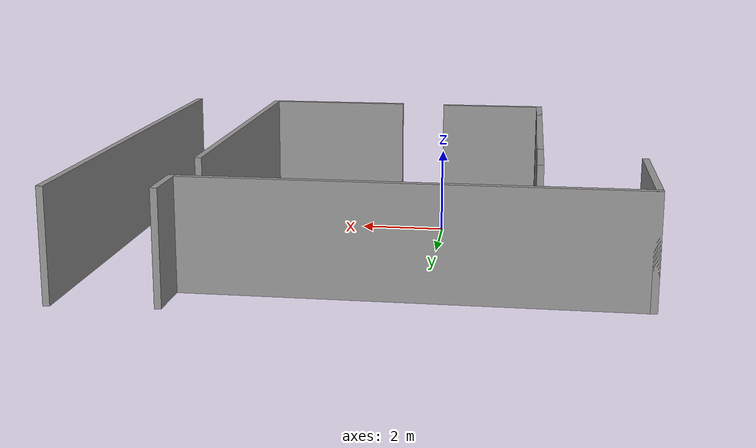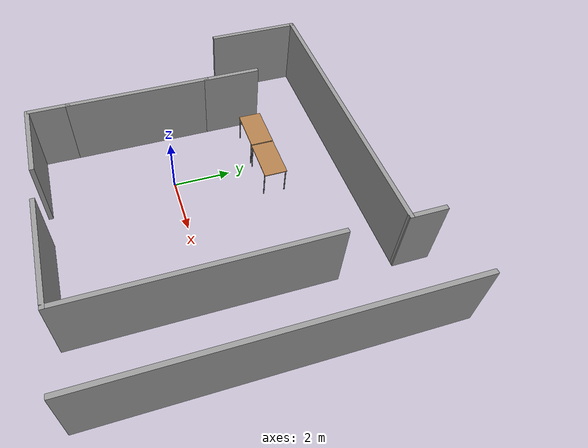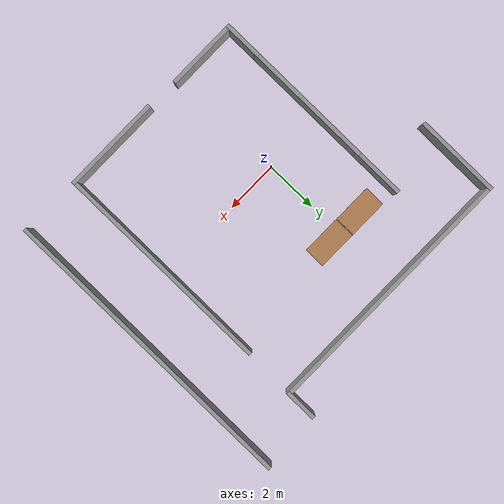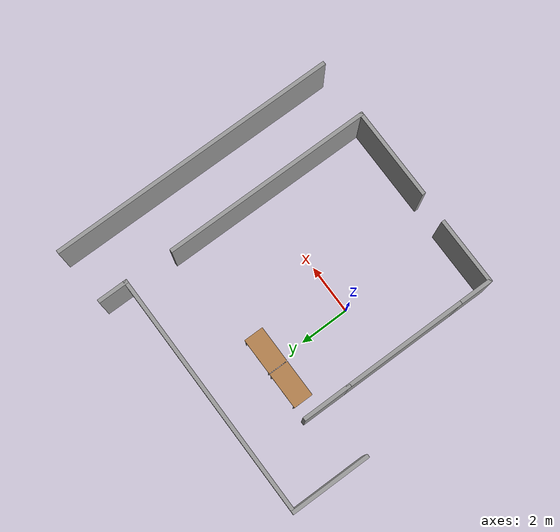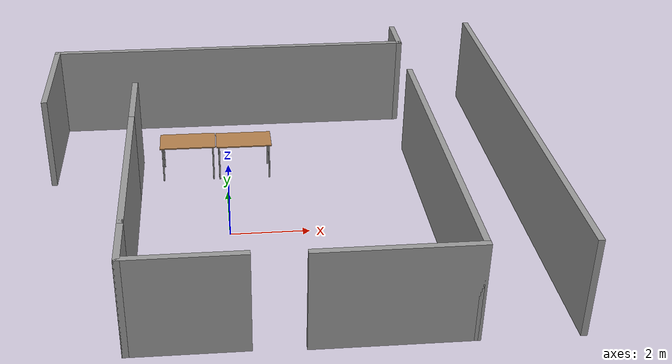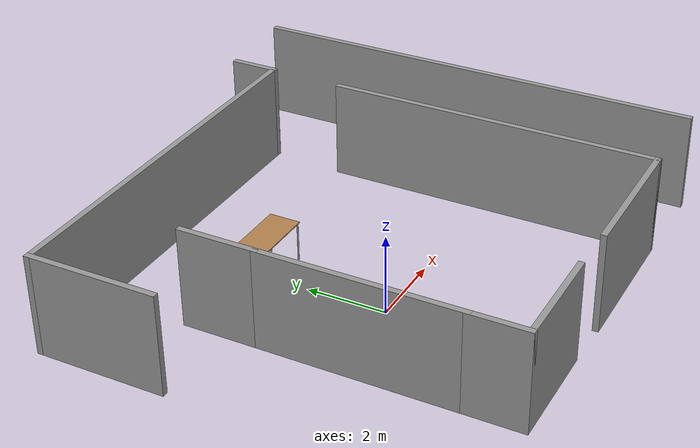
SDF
<sdf version="1.7">
 <world name="default">
  <light name="sun" type="directional">
   <pose>0 0 10 0 -0 0</pose>
   <diffuse>0.8 0.8 0.8 1</diffuse>
   <specular>0.2 0.2 0.2 1</specular>
   <attenuation>
    <range>1000</range>
    <constant>0.9</constant>
    <linear>0.01</linear>
    <quadratic>0.001</quadratic>
   </attenuation>
   <direction>-0.5 0.1 -0.9</direction>
   <spot><inner_angle>0</inner_angle><outer_angle>0</outer_angle><falloff>0</falloff></spot>
  </light>
  <gravity>0 0 -9.8</gravity>
  <magnetic_field>6e-06 2.3e-05 -4.2e-05</magnetic_field>
  <atmosphere type="adiabatic"/>
  <physics name="default_physics" default="0" type="ode">
   <max_step_size>0.001</max_step_size>
   <real_time_factor>1</real_time_factor>
   <real_time_update_rate>1000</real_time_update_rate>
  </physics>
  <scene><ambient>0.4 0.4 0.4 1</ambient><background>0.7 0.7 0.7 1</background><shadows>1</shadows></scene>
  <spherical_coordinates>
   <surface_model>EARTH_WGS84</surface_model>
   <latitude_deg>0</latitude_deg>
   <longitude_deg>0</longitude_deg>
   <elevation>0</elevation>
   <heading_deg>0</heading_deg>
  </spherical_coordinates>
  <model name="ground_plane">
   <static>1</static>
   <link name="link">
    <collision name="collision">
     <geometry><plane><normal>0 0 1</normal><size>100 100</size></plane></geometry>
     <surface><friction><ode><mu>100</mu><mu2>50</mu2></ode></friction></surface>
    </collision>
   </link>
  </model>
  <model name="Untitled">
   <pose>1.4165 1.36436 0 0 -0 0</pose>
   <link name="Wall_11">
    <collision name="Wall_11_Collision">
     <geometry><box><size>1.5 0.15 2.5</size></box></geometry>
     <pose>0 0 1.25 0 -0 0</pose>
    </collision>
    <visual name="Wall_11_Visual">
     <pose>0 0 1.25 0 -0 0</pose>
     <geometry><box><size>1.5 0.15 2.5</size></box></geometry>
     <material>
      <script><uri>file://media/materials/scripts/gazebo.material</uri><name>Gazebo/Grey</name></script>
      <ambient>1 1 1 1</ambient>
     </material>
     <meta><layer>0</layer></meta>
    </visual>
    <pose>-3.7787 -5.03873 0 0 -0 -1.5708</pose>
   </link>
   <link name="Wall_12">
    <collision name="Wall_12_Collision">
     <geometry><box><size>2.75 0.15 2.5</size></box></geometry>
     <pose>0 0 1.25 0 -0 0</pose>
    </collision>
    <visual name="Wall_12_Visual">
     <pose>0 0 1.25 0 -0 0</pose>
     <geometry><box><size>2.75 0.15 2.5</size></box></geometry>
     <material>
      <script><uri>file://media/materials/scripts/gazebo.material</uri><name>Gazebo/Grey</name></script>
      <ambient>1 1 1 1</ambient>
     </material>
     <meta><layer>0</layer></meta>
    </visual>
    <pose>-2.4787 -5.71373 0 0 -0 0</pose>
   </link>
   <link name="Wall_14">
    <collision name="Wall_14_Collision">
     <geometry><box><size>3.75 0.15 2.5</size></box></geometry>
     <pose>0 0 1.25 0 -0 0</pose>
    </collision>
    <visual name="Wall_14_Visual">
     <pose>0 0 1.25 0 -0 0</pose>
     <geometry><box><size>3.75 0.15 2.5</size></box></geometry>
     <material>
      <script><uri>file://media/materials/scripts/gazebo.material</uri><name>Gazebo/Grey</name></script>
      <ambient>1 1 1 1</ambient>
     </material>
     <meta><layer>0</layer></meta>
    </visual>
    <pose>1.93376 -5.77325 0 0 -0 0</pose>
   </link>
   <link name="Wall_15">
    <collision name="Wall_15_Collision">
     <geometry><box><size>8.5 0.15 2.5</size></box></geometry>
     <pose>0 0 1.25 0 -0 0</pose>
    </collision>
    <visual name="Wall_15_Visual">
     <pose>0 0 1.25 0 -0 0</pose>
     <geometry><box><size>8.5 0.15 2.5</size></box></geometry>
     <material>
      <script><uri>file://media/materials/scripts/gazebo.material</uri><name>Gazebo/Grey</name></script>
      <ambient>1 1 1 1</ambient>
     </material>
     <meta><layer>0</layer></meta>
    </visual>
    <pose>3.73376 -1.59825 0 0 -0 1.5708</pose>
   </link>
   <link name="Wall_17">
    <collision name="Wall_17_Collision">
     <geometry><box><size>3.25 0.15 2.5</size></box></geometry>
     <pose>0 0 1.25 0 -0 0</pose>
    </collision>
    <visual name="Wall_17_Visual">
     <pose>0 0 1.25 0 -0 0</pose>
     <geometry><box><size>3.25 0.15 2.5</size></box></geometry>
     <material>
      <script><uri>file://media/materials/scripts/gazebo.material</uri><name>Gazebo/Grey</name></script>
      <ambient>1 1 1 1</ambient>
     </material>
     <meta><layer>0</layer></meta>
    </visual>
    <pose>-6.07253 3.00273 0 0 -0 -1.5708</pose>
   </link>
   <link name="Wall_19">
    <collision name="Wall_19_Collision">
     <geometry><box><size>11.75 0.15 2.5</size></box></geometry>
     <pose>0 0 1.25 0 -0 0</pose>
    </collision>
    <visual name="Wall_19_Visual">
     <pose>0 0 1.25 0 -0 0</pose>
     <geometry><box><size>11.75 0.15 2.5</size></box></geometry>
     <material>
      <script><uri>file://media/materials/scripts/gazebo.material</uri><name>Gazebo/Grey</name></script>
      <ambient>1 1 1 1</ambient>
     </material>
     <meta><layer>0</layer></meta>
    </visual>
    <pose>6.07253 -0 0 0 -0 1.5708</pose>
   </link>
   <link name="Wall_22">
    <collision name="Wall_22_Collision">
     <geometry><box><size>1.25 0.15 2.5</size></box></geometry>
     <pose>0 0 1.25 0 -0 0</pose>
    </collision>
    <visual name="Wall_22_Visual">
     <pose>0 0 1.25 0 -0 0</pose>
     <geometry><box><size>1.25 0.15 2.5</size></box></geometry>
     <material>
      <script><uri>file://media/materials/scripts/gazebo.material</uri><name>Gazebo/Grey</name></script>
      <ambient>1 1 1 1</ambient>
     </material>
     <meta><layer>0</layer></meta>
    </visual>
    <pose>3.77747 5.10273 0 0 -0 1.5708</pose>
   </link>
   <link name="Wall_4">
    <collision name="Wall_4_Collision">
     <geometry><box><size>5 0.15 2.5</size></box></geometry>
     <pose>0 0 1.25 0 -0 0</pose>
    </collision>
    <visual name="Wall_4_Visual">
     <pose>0 0 1.25 0 -0 0</pose>
     <geometry><box><size>5 0.15 2.5</size></box></geometry>
     <material>
      <script><uri>file://media/materials/scripts/gazebo.material</uri><name>Gazebo/Grey</name></script>
      <ambient>1 1 1 1</ambient>
     </material>
     <meta><layer>0</layer></meta>
    </visual>
    <pose>-3.7787 -1.93873 0 0 -0 1.5708</pose>
   </link>
   <link name="Wall_7">
    <collision name="Wall_7_Collision">
     <geometry><box><size>10 0.15 2.5</size></box></geometry>
     <pose>0 0 1.25 0 -0 0</pose>
    </collision>
    <visual name="Wall_7_Visual">
     <pose>0 0 1.25 0 -0 0</pose>
     <geometry><box><size>10 0.15 2.5</size></box></geometry>
     <material>
      <script><uri>file://media/materials/scripts/gazebo.material</uri><name>Gazebo/Grey</name></script>
      <ambient>1 1 1 1</ambient>
     </material>
     <meta><layer>0</layer></meta>
    </visual>
    <pose>-1.14753 4.55273 0 0 -0 0</pose>
   </link>
   <link name="Wall_9">
    <collision name="Wall_9_Collision">
     <geometry><box><size>2 0.15 2.5</size></box></geometry>
     <pose>0 0 1.25 0 -0 0</pose>
    </collision>
    <visual name="Wall_9_Visual">
     <pose>0 0 1.25 0 -0 0</pose>
     <geometry><box><size>2 0.15 2.5</size></box></geometry>
     <material>
      <script><uri>file://media/materials/scripts/gazebo.material</uri><name>Gazebo/Grey</name></script>
      <ambient>1 1 1 1</ambient>
     </material>
     <meta><layer>0</layer></meta>
    </visual>
    <pose>-3.7787 1.41127 0 0 -0 1.5708</pose>
   </link>
   <static>1</static>
  </model>
  <model name="table">
   <static>1</static>
   <link name="link">
    <collision name="surface">
     <pose>0 0 1 0 -0 0</pose>
     <geometry><box><size>1.5 0.8 0.03</size></box></geometry>
     <surface><friction><ode><mu>0.6</mu><mu2>0.6</mu2></ode></friction></surface>
    </collision>
    <visual name="visual1">
     <pose>0 0 1 0 -0 0</pose>
     <geometry><box><size>1.5 0.8 0.03</size></box></geometry>
     <material>
      <script><uri>file://media/materials/scripts/gazebo.material</uri><name>Gazebo/Wood</name></script>
     </material>
    </visual>
    <collision name="front_left_leg">
     <pose>0.68 0.38 0.5 0 -0 0</pose>
     <geometry><cylinder><radius>0.02</radius><length>1</length></cylinder></geometry>
    </collision>
    <visual name="front_left_leg">
     <pose>0.68 0.38 0.5 0 -0 0</pose>
     <geometry><cylinder><radius>0.02</radius><length>1</length></cylinder></geometry>
     <material>
      <script><uri>file://media/materials/scripts/gazebo.material</uri><name>Gazebo/Grey</name></script>
     </material>
    </visual>
    <collision name="front_right_leg">
     <pose>0.68 -0.38 0.5 0 -0 0</pose>
     <geometry><cylinder><radius>0.02</radius><length>1</length></cylinder></geometry>
    </collision>
    <visual name="front_right_leg">
     <pose>0.68 -0.38 0.5 0 -0 0</pose>
     <geometry><cylinder><radius>0.02</radius><length>1</length></cylinder></geometry>
     <material>
      <script><uri>file://media/materials/scripts/gazebo.material</uri><name>Gazebo/Grey</name></script>
     </material>
    </visual>
    <collision name="back_right_leg">
     <pose>-0.68 -0.38 0.5 0 -0 0</pose>
     <geometry><cylinder><radius>0.02</radius><length>1</length></cylinder></geometry>
    </collision>
    <visual name="back_right_leg">
     <pose>-0.68 -0.38 0.5 0 -0 0</pose>
     <geometry><cylinder><radius>0.02</radius><length>1</length></cylinder></geometry>
     <material>
      <script><uri>file://media/materials/scripts/gazebo.material</uri><name>Gazebo/Grey</name></script>
     </material>
    </visual>
    <collision name="back_left_leg">
     <pose>-0.68 0.38 0.5 0 -0 0</pose>
     <geometry><cylinder><radius>0.02</radius><length>1</length></cylinder></geometry>
    </collision>
    <visual name="back_left_leg">
     <pose>-0.68 0.38 0.5 0 -0 0</pose>
     <geometry><cylinder><radius>0.02</radius><length>1</length></cylinder></geometry>
     <material>
      <script><uri>file://media/materials/scripts/gazebo.material</uri><name>Gazebo/Grey</name></script>
     </material>
    </visual>
   </link>
   <pose>0.49546 3.31377 -0.128266 0 -0 0</pose>
  </model>
  <model name="table_0">
   <static>1</static>
   <link name="link">
    <collision name="surface">
     <pose>0 0 1 0 -0 0</pose>
     <geometry><box><size>1.5 0.8 0.03</size></box></geometry>
     <surface><friction><ode><mu>0.6</mu><mu2>0.6</mu2></ode></friction></surface>
    </collision>
    <visual name="visual1">
     <pose>0 0 1 0 -0 0</pose>
     <geometry><box><size>1.5 0.8 0.03</size></box></geometry>
     <material>
      <script><uri>file://media/materials/scripts/gazebo.material</uri><name>Gazebo/Wood</name></script>
     </material>
    </visual>
    <collision name="front_left_leg">
     <pose>0.68 0.38 0.5 0 -0 0</pose>
     <geometry><cylinder><radius>0.02</radius><length>1</length></cylinder></geometry>
    </collision>
    <visual name="front_left_leg">
     <pose>0.68 0.38 0.5 0 -0 0</pose>
     <geometry><cylinder><radius>0.02</radius><length>1</length></cylinder></geometry>
     <material>
      <script><uri>file://media/materials/scripts/gazebo.material</uri><name>Gazebo/Grey</name></script>
     </material>
    </visual>
    <collision name="front_right_leg">
     <pose>0.68 -0.38 0.5 0 -0 0</pose>
     <geometry><cylinder><radius>0.02</radius><length>1</length></cylinder></geometry>
    </collision>
    <visual name="front_right_leg">
     <pose>0.68 -0.38 0.5 0 -0 0</pose>
     <geometry><cylinder><radius>0.02</radius><length>1</length></cylinder></geometry>
     <material>
      <script><uri>file://media/materials/scripts/gazebo.material</uri><name>Gazebo/Grey</name></script>
     </material>
    </visual>
    <collision name="back_right_leg">
     <pose>-0.68 -0.38 0.5 0 -0 0</pose>
     <geometry><cylinder><radius>0.02</radius><length>1</length></cylinder></geometry>
    </collision>
    <visual name="back_right_leg">
     <pose>-0.68 -0.38 0.5 0 -0 0</pose>
     <geometry><cylinder><radius>0.02</radius><length>1</length></cylinder></geometry>
     <material>
      <script><uri>file://media/materials/scripts/gazebo.material</uri><name>Gazebo/Grey</name></script>
     </material>
    </visual>
    <collision name="back_left_leg">
     <pose>-0.68 0.38 0.5 0 -0 0</pose>
     <geometry><cylinder><radius>0.02</radius><length>1</length></cylinder></geometry>
    </collision>
    <visual name="back_left_leg">
     <pose>-0.68 0.38 0.5 0 -0 0</pose>
     <geometry><cylinder><radius>0.02</radius><length>1</length></cylinder></geometry>
     <material>
      <script><uri>file://media/materials/scripts/gazebo.material</uri><name>Gazebo/Grey</name></script>
     </material>
    </visual>
   </link>
   <pose>-1.031 3.3172 -0.113959 0 -0 0</pose>
  </model>
 </world>
</sdf>
